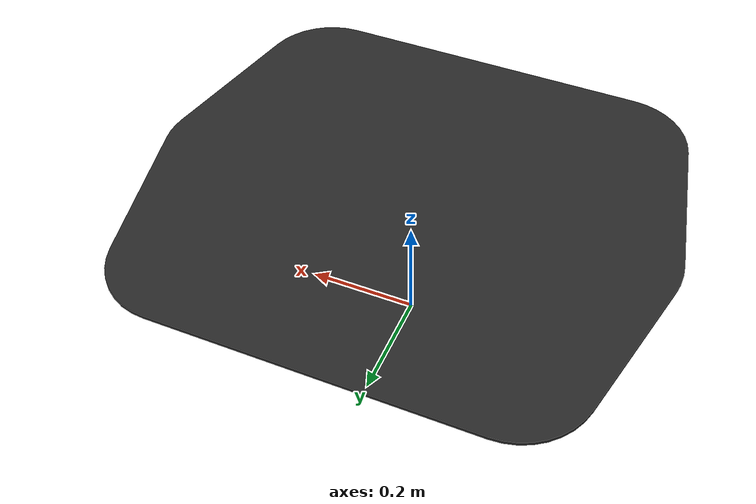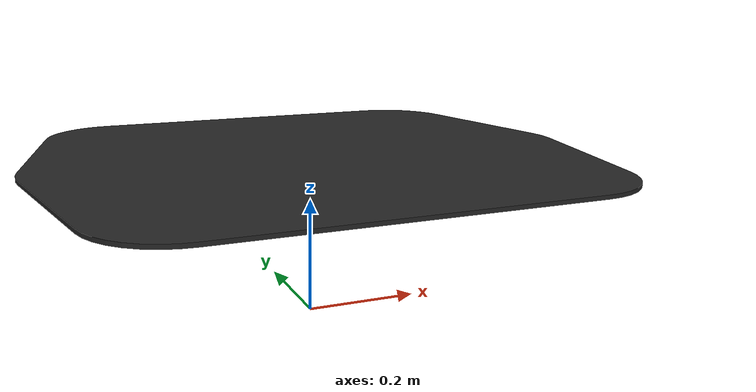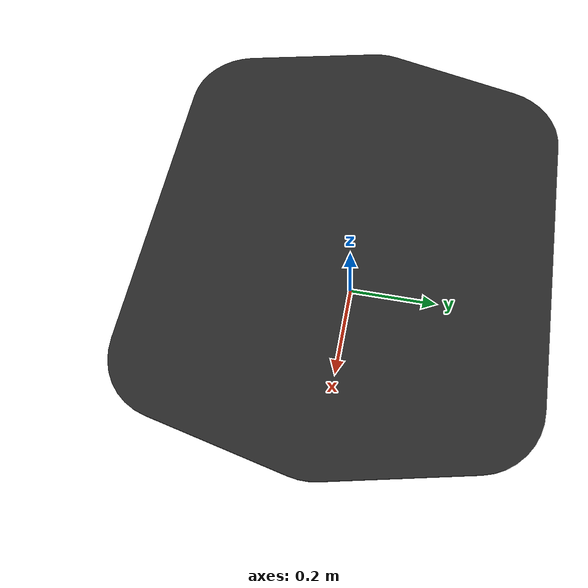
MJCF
<mujoco model="top">
  <default>
    <default class="visual">
      <geom group="2" type="mesh" contype="0" conaffinity="0"/>
    </default>
    <default class="collision">
      <geom group="3" type="mesh"/>
    </default>
  </default>
  <asset>
    <material name="mtl_top" specular="0.20000000000000004" shininess="1.0" rgba="0.14901961 0.14901961 0.14901961 1.0"/>
    <mesh file="top.obj"/>
  </asset>
  <worldbody>
    <body name="top">
      <geom material="mtl_top" mesh="top" class="visual"/>
      <geom mesh="top" class="collision"/>
    </body>
  </worldbody>
</mujoco>
